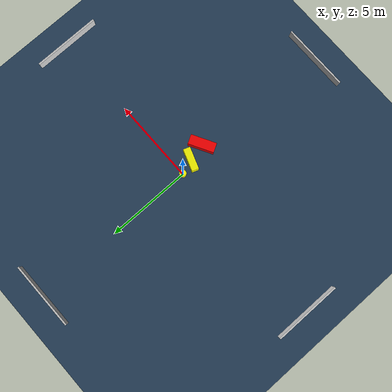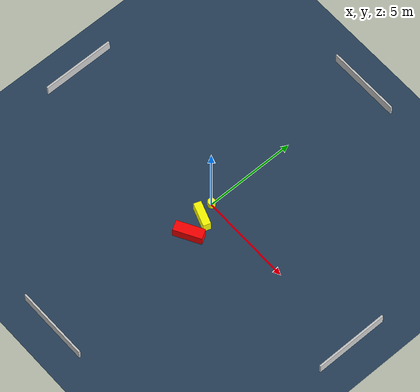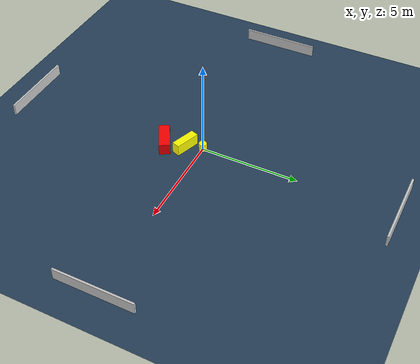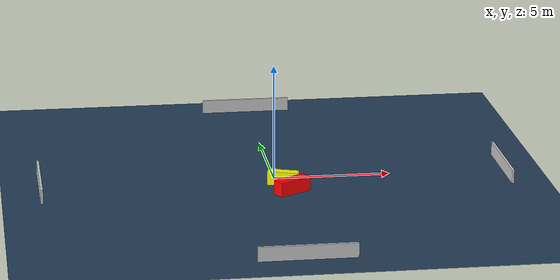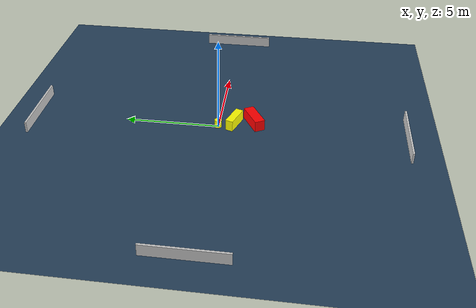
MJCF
<?xml version="1.0" ?>
<mujoco model="generated_environment">
  <option timestep="0.01" integrator="RK4" cone="elliptic"/>
  <default>
    <geom density="1"/>
  </default>
  <asset>
    <texture builtin="gradient" height="3072" name="skybox" rgb1="0.3 0.5 0.7" rgb2="0 0 0" type="skybox" width="512"/>
    <texture builtin="checker" height="300" name="groundplane" rgb1="0.2 0.3 0.4" rgb2="0.1 0.2 0.3" type="2d" width="300"/>
    <material name="groundplane" reflectance="0.2" texrepeat="5 5" texture="groundplane"/>
  </asset>
  <worldbody>
    <light dir="0 0 -1" directional="true" pos="0 0 1.5"/>
    <geom condim="3" friction="0.5 0.005 0.001" material="groundplane" name="floor" pos="0 0 0" size="0 0 0.05" type="plane"/>
    <body name="walls">
      <geom name="wall_1" condim="4" pos="-10.0 0.0 0.3" rgba="0.800000011920929 0.800000011920929 0.800000011920929 1.0" size="0.05 2.0 0.3" type="box"/>
      <geom name="wall_2" condim="4" pos="10.0 0.0 0.3" rgba="0.800000011920929 0.800000011920929 0.800000011920929 1.0" size="0.05 2.0 0.3" type="box"/>
      <geom name="wall_3" condim="4" pos="0.0 -10.0 0.3" rgba="0.800000011920929 0.800000011920929 0.800000011920929 1.0" size="2.0 0.05 0.3" type="box"/>
      <geom name="wall_4" condim="4" pos="0.0 10.0 0.3" rgba="0.800000011920929 0.800000011920929 0.800000011920929 1.0" size="2.0 0.05 0.3" type="box"/>
    </body>
    <body name="robot">
      <joint name="joint_x" type="slide" pos="0 0 0" axis="1 0 0"/>
      <joint name="joint_y" type="slide" pos="0 0 0" axis="0 1 0"/>
      <geom name="robot" type="cylinder" pos="0.0 0.0 0.2" size="0.2 0.2 0.0" mass="5.0" friction="1.0 0.005 0.0001" condim="4" rgba="1.0 1.0 0.0 1.0"/>
    </body>
    <body name="obstacle_1_movable">
      <geom name="obstacle_1_movable" condim="4" pos="0.2776918388538144 -0.84061105687082 0.3" euler="0 0 250.45327237846078" friction="0.0 0.005 0.001" rgba="1.0 1.0 0.0 1.0" size="0.20589140259047312 0.6532229082458849 0.3" type="box" mass="0.1"/>
      <joint type="free"/>
    </body>
    <body name="obstacle_2_static">
      <geom name="obstacle_2_static" condim="4" pos="0.5190770156913942 -1.8883572377898301 0.3" euler="0 0 209.14870320505082" friction="0.0 0.005 0.001" rgba="1.0 0.0 0.0 1.0" size="0.7564920739300578 0.2804453391520829 0.3" type="box"/>
    </body>
  </worldbody>
  <actuator>
    <motor name="actuator_x" joint="joint_x" gear="1" ctrlrange="-1 1"/>
    <motor name="actuator_y" joint="joint_y" gear="1" ctrlrange="-1 1"/>
  </actuator>
</mujoco>
